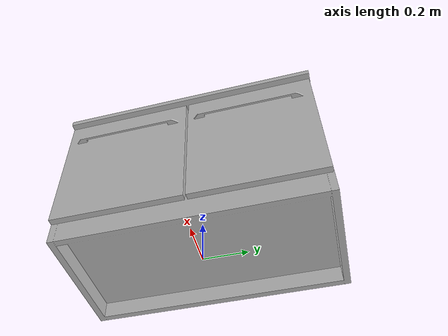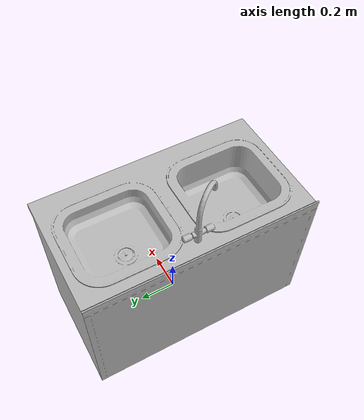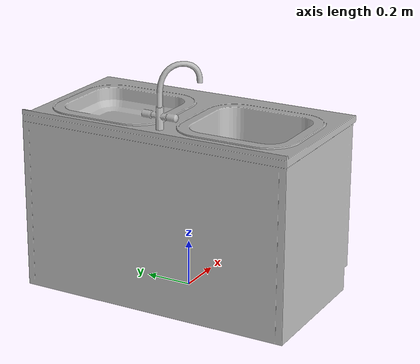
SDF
<?xml version='1.0'?>
<sdf version='1.4'>
  <model name='285'>
    <pose>0 0 0 0 0 0</pose>
    <static>true</static>
    <link name='link'>
      <collision name='collision'>
        <pose>0 0 0 0 0 0</pose>
        <geometry>
          <box>
            <size>0.66 1.2 2</size>
          </box>
        </geometry>
      </collision>
      <visual name='visual'>
        <pose>0 0 0 0 0 0</pose>
        <geometry>
          <mesh><uri>model://285/285.dae</uri></mesh>
        </geometry>
      </visual>
    </link>
  </model>
</sdf>
